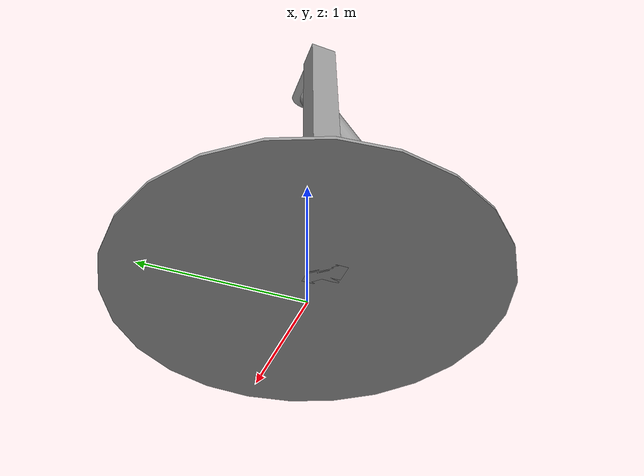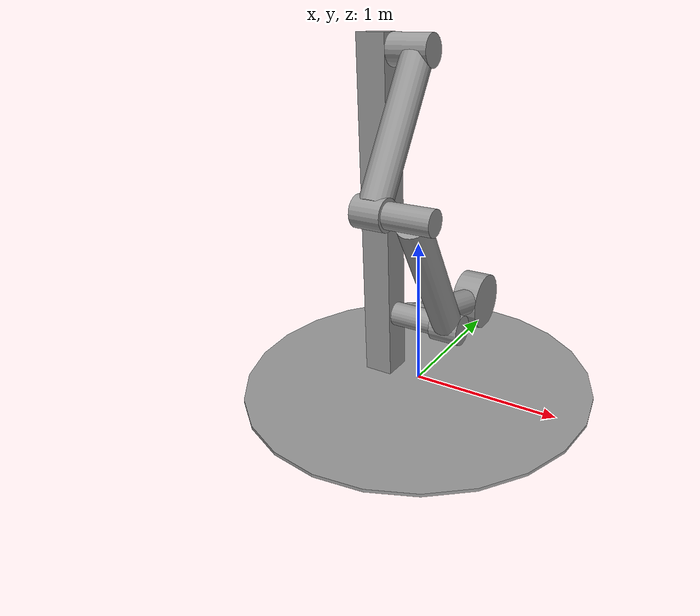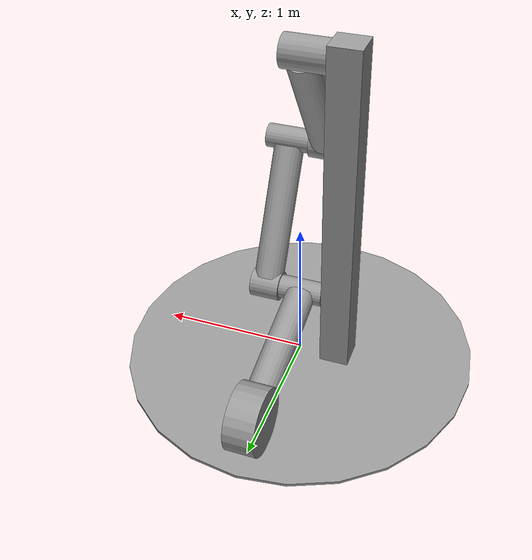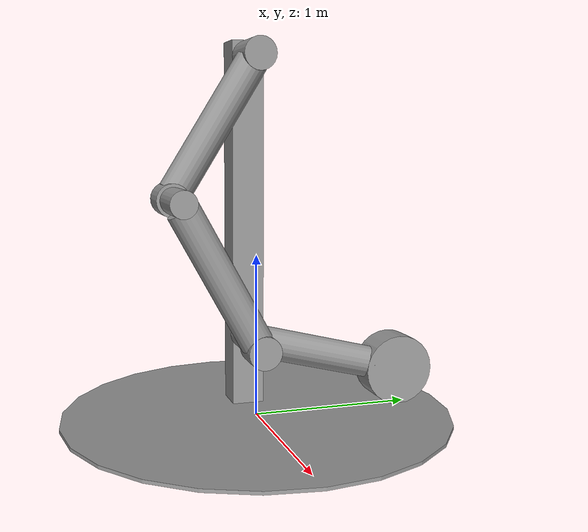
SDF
<?xml version="1.0" ?>
<sdf version="1.5">
  <model name="four_bar_with_base">
    <link name="base">
      <inertial>
        <pose>0 0 0.1 0 0 0</pose>
        <mass>120</mass>
        <inertia>
          <ixx>46</ixx>
          <ixy>0</ixy>
          <ixz>0</ixz>
          <iyy>46</iyy>
          <iyz>0</iyz>
          <izz>90</izz>
        </inertia>
      </inertial>
      <visual name="vis_plate_on_ground">
        <pose>0 0 0.01 0 0 0</pose>
        <geometry>
          <cylinder>
            <radius>1.2</radius>
            <length>0.02</length>
          </cylinder>
        </geometry>
        <material>
          <script>
            <uri>file://media/materials/scripts/gazebo.material</uri>
            <name>Gazebo/Grey</name>
          </script>
        </material>
      </visual>
      <visual name="vis_pole">
        <pose>-0.275 0 1.15 0 0 0</pose>
        <geometry>
          <box>
            <size>0.2 0.2 2.3</size>
          </box>
        </geometry>
        <material>
          <script>
            <uri>file://media/materials/scripts/gazebo.material</uri>
            <name>Gazebo/Grey</name>
          </script>
        </material>
      </visual>
      <collision name="col_plate_on_ground">
        <pose>0 0 0.01 0 0 0</pose>
        <geometry>
          <cylinder>
            <radius>1.2</radius>
            <length>0.02</length>
          </cylinder>
        </geometry>
      </collision>
      <collision name="col_pole">
        <pose>-0.275 0 1.15 0 0 0</pose>
        <geometry>
          <box>
            <size>0.2 0.2 2.3</size>
          </box>
        </geometry>
      </collision>
    </link>
    <!-- upper link, length 1 -->
    <link name="upper_link">
      <pose>0 0 2.2 2.58719 0 0</pose>
      <self_collide>0</self_collide>
      <inertial>
        <pose>0 0 0.5 0 0 0</pose>
        <mass>12</mass>
        <inertia>
          <ixx>0.85</ixx>
          <ixy>0</ixy>
          <ixz>0</ixz>
          <iyy>0.85</iyy>
          <iyz>0</iyz>
          <izz>0.04</izz>
        </inertia>
      </inertial>
      <visual name="vis_upper_joint">
        <pose>-0.05 0 0 0 1.5708 0</pose>
        <geometry>
          <cylinder>
            <radius>0.1</radius>
            <length>0.3</length>
          </cylinder>
        </geometry>
        <material>
          <script>
            <uri>file://media/materials/scripts/gazebo.material</uri>
            <name>Gazebo/Grey</name>
          </script>
        </material>
      </visual>
      <visual name="vis_upper_middle_joint">
        <pose>0 0 1.0 0 1.5708 0</pose>
        <geometry>
          <cylinder>
            <radius>0.1</radius>
            <length>0.2</length>
          </cylinder>
        </geometry>
        <material>
          <script>
            <uri>file://media/materials/scripts/gazebo.material</uri>
            <name>Gazebo/Grey</name>
          </script>
        </material>
      </visual>
      <visual name="vis_cylinder">
        <pose>0 0 0.5 0 0 0</pose>
        <geometry>
          <cylinder>
            <radius>0.1</radius>
            <length>0.9</length>
          </cylinder>
        </geometry>
        <material>
          <script>
            <uri>file://media/materials/scripts/gazebo.material</uri>
            <name>Gazebo/Grey</name>
          </script>
        </material>
      </visual>
      <collision name="col_upper_joint">
        <pose>-0.05 0 0 0 1.5708 0</pose>
        <geometry>
          <cylinder>
            <radius>0.1</radius>
            <length>0.3</length>
          </cylinder>
        </geometry>
      </collision>
      <collision name="col_upper_middle_joint">
        <pose>0 0 1.0 0 1.5708 0</pose>
        <geometry>
          <cylinder>
            <radius>0.1</radius>
            <length>0.2</length>
          </cylinder>
        </geometry>
      </collision>
      <collision name="col_cylinder">
        <pose>0 0 0.5 0 0 0</pose>
        <geometry>
          <cylinder>
            <radius>0.1</radius>
            <length>0.9</length>
          </cylinder>
        </geometry>
      </collision>
    </link>
    <!-- middle link, length 1 -->
    <link name="middle_link">
      <pose>0.25 -0.5265 1.35 -2.639 0 0</pose>
      <self_collide>0</self_collide>
      <inertial>
        <pose>0 0 0.5 0 0 0</pose>
        <mass>12</mass>
        <inertia>
          <ixx>0.85</ixx>
          <ixy>0</ixy>
          <ixz>0</ixz>
          <iyy>0.85</iyy>
          <iyz>0</iyz>
          <izz>0.04</izz>
        </inertia>
      </inertial>
      <visual name="vis_upper_middle_joint">
        <pose>0 0 0 0 1.5708 0</pose>
        <geometry>
          <cylinder>
            <radius>0.08</radius>
            <length>0.3</length>
          </cylinder>
        </geometry>
        <material>
          <script>
            <uri>file://media/materials/scripts/gazebo.material</uri>
            <name>Gazebo/Grey</name>
          </script>
        </material>
      </visual>
      <visual name="vis_cylinder">
        <pose>0 0 0.5 0 0 0</pose>
        <geometry>
          <cylinder>
            <radius>0.1</radius>
            <length>0.9</length>
          </cylinder>
        </geometry>
        <material>
          <script>
            <uri>file://media/materials/scripts/gazebo.material</uri>
            <name>Gazebo/Grey</name>
          </script>
        </material>
      </visual>
      <visual name="vis_middle_lower_joint">
        <pose>0 0 1.0 0 1.5708 0</pose>
        <geometry>
          <cylinder>
            <radius>0.1</radius>
            <length>0.2</length>
          </cylinder>
        </geometry>
        <material>
          <script>
            <uri>file://media/materials/scripts/gazebo.material</uri>
            <name>Gazebo/Grey</name>
          </script>
        </material>
      </visual>
      <collision name="col_upper_middle_joint">
        <pose>0 0 0 0 1.5708 0</pose>
        <geometry>
          <cylinder>
            <radius>0.08</radius>
            <length>0.3</length>
          </cylinder>
        </geometry>
      </collision>
      <collision name="col_cylinder">
        <pose>0 0 0.5 0 0 0</pose>
        <geometry>
          <cylinder>
            <radius>0.1</radius>
            <length>0.9</length>
          </cylinder>
        </geometry>
      </collision>
      <collision name="col_middle_lower_joint">
        <pose>0 0 1.0 0 1.5708 0</pose>
        <geometry>
          <cylinder>
            <radius>0.1</radius>
            <length>0.2</length>
          </cylinder>
        </geometry>
      </collision>
    </link>
    <!-- lower link, length 1, IC ~-120 degrees more -->
    <link name="lower_link">
      <pose>0 -0.042713 0.480714 -1.82 0 0</pose>
      <self_collide>0</self_collide>
      <inertial>
        <pose>0 0 0.5 0 0 0</pose>
        <mass>12</mass>
        <inertia>
          <ixx>0.85</ixx>
          <ixy>0</ixy>
          <ixz>0</ixz>
          <iyy>0.85</iyy>
          <iyz>0</iyz>
          <izz>0.04</izz>
        </inertia>
      </inertial>
      <visual name="vis_middle_lower_joint">
        <pose>0 0 0 0 1.5708 0</pose>
        <geometry>
          <cylinder>
            <radius>0.08</radius>
            <length>0.3</length>
          </cylinder>
        </geometry>
        <material>
          <script>
            <uri>file://media/materials/scripts/gazebo.material</uri>
            <name>Gazebo/Grey</name>
          </script>
        </material>
      </visual>
      <visual name="vis_cylinder">
        <pose>0 0 0.5 0 0 0</pose>
        <geometry>
          <cylinder>
            <radius>0.1</radius>
            <length>0.9</length>
          </cylinder>
        </geometry>
        <material>
          <script>
            <uri>file://media/materials/scripts/gazebo.material</uri>
            <name>Gazebo/Grey</name>
          </script>
        </material>
      </visual>
      <visual name="vis_closed_loop_joint">
        <pose>0 0 1.0 0 1.5708 0</pose>
        <geometry>
          <cylinder>
            <radius>0.22</radius>
            <length>0.2</length>
          </cylinder>
        </geometry>
        <material>
          <script>
            <uri>file://media/materials/scripts/gazebo.material</uri>
            <name>Gazebo/Grey</name>
          </script>
        </material>
      </visual>
      <collision name="col_middle_lower_joint">
        <pose>0 0 0 0 1.5708 0</pose>
        <geometry>
          <cylinder>
            <radius>0.08</radius>
            <length>0.3</length>
          </cylinder>
        </geometry>
      </collision>
      <collision name="col_cylinder">
        <pose>0 0 0.5 0 0 0</pose>
        <geometry>
          <cylinder>
            <radius>0.1</radius>
            <length>0.9</length>
          </cylinder>
        </geometry>
      </collision>
      <collision name="col_closed_loop_joint">
        <pose>0 0 1.0 0 1.5708 0</pose>
        <geometry>
          <cylinder>
            <radius>0.22</radius>
            <length>0.2</length>
          </cylinder>
        </geometry>
      </collision>
    </link>
    <!-- pin joint for upper link, at origin of upper link -->
    <joint name="upper_joint" type="revolute">
      <parent>base</parent>
      <child>upper_link</child>
      <axis>
        <xyz>1.0 0 0</xyz>
      </axis>
    </joint>
    <!-- pin joint for lower link, at origin of child link -->
    <joint name="upper_middle_joint" type="revolute">
      <parent>upper_link</parent>
      <child>middle_link</child>
      <axis>
        <xyz>1.0 0 0</xyz>
      </axis>
    </joint>
    <!-- pin joint for lower link_clone, at origin of child link -->
    <joint name="middle_lower_joint" type="revolute">
      <parent>middle_link</parent>
      <child>lower_link</child>
      <axis>
        <xyz>1.0 0 0</xyz>
      </axis>
    </joint>
    <!-- pin joint for lower link_clone, at origin of child link -->
    <joint name="closed_loop_joint" type="revolute">
      <pose>0 0 1.0 0 0 0</pose>
      <parent>base</parent>
      <child>lower_link</child>
      <axis>
        <xyz>1.0 0 0</xyz>
      </axis>
    </joint>
  </model>
</sdf>
